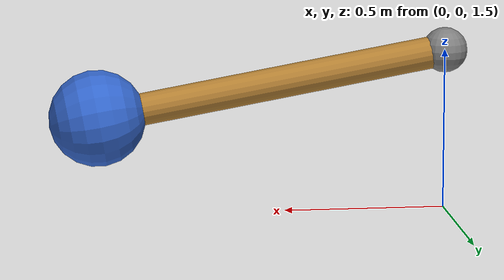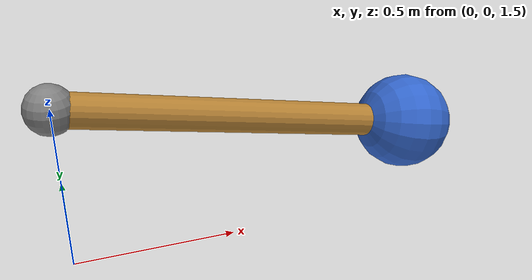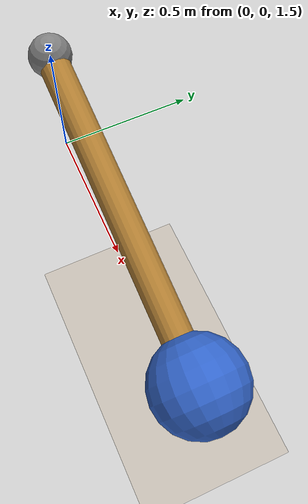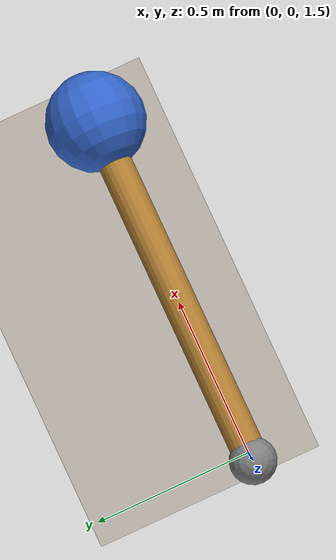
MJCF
<mujoco>
    <include file="../common/materials.xml" />
    <option timestep="0.005" />
    <worldbody>
        <light pos="0 0 3" dir="0 0 -1" directional="true" />
        <geom name="floor" size="0 0 0.01" type="plane" material="motphys-ground" />
        <body name="pivot" pos="0 0 2">
            <geom type="sphere" size="0.07" rgba="0.5 0.5 0.5 1" />
            <body name="pendulum" euler="0 -80 0">
                <joint name="pendulum_hinge" type="hinge" axis="0 1 0" />
                <geom type="capsule" size="0.05 0.5" pos="0 0 -0.5" rgba="0.7 0.5 0.2 1" />
                <geom type="sphere" size="0.15" pos="0 0 -1.1" rgba="0.2 0.4 0.8 1" />
            </body>
        </body>
    </worldbody>
</mujoco>

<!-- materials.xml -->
<!--
Common textures, colors and materials to be used throughout this suite. Some
materials such as xxx_highlight are activated on occurence of certain events,
for example receiving a positive reward.
-->
<mujoco>
  <asset>
    <texture name="motphys-ground" type="2d" file="motphys-ground.png" />
    <material name="motphys-ground" texture="motphys-ground" texuniform="true"
      texrepeat="0.4 0.4" />
  </asset>
</mujoco>
